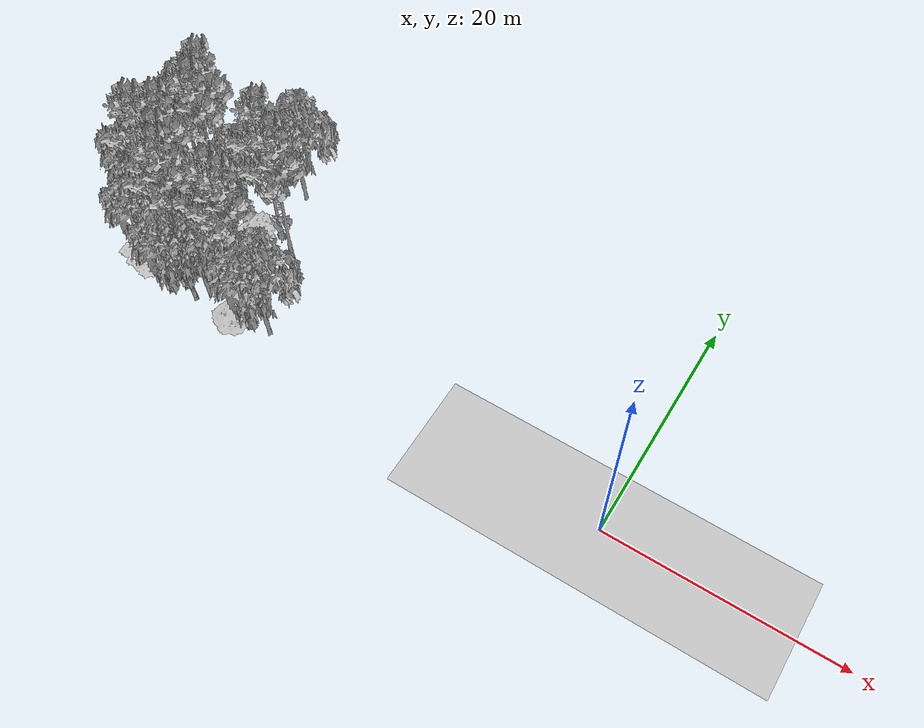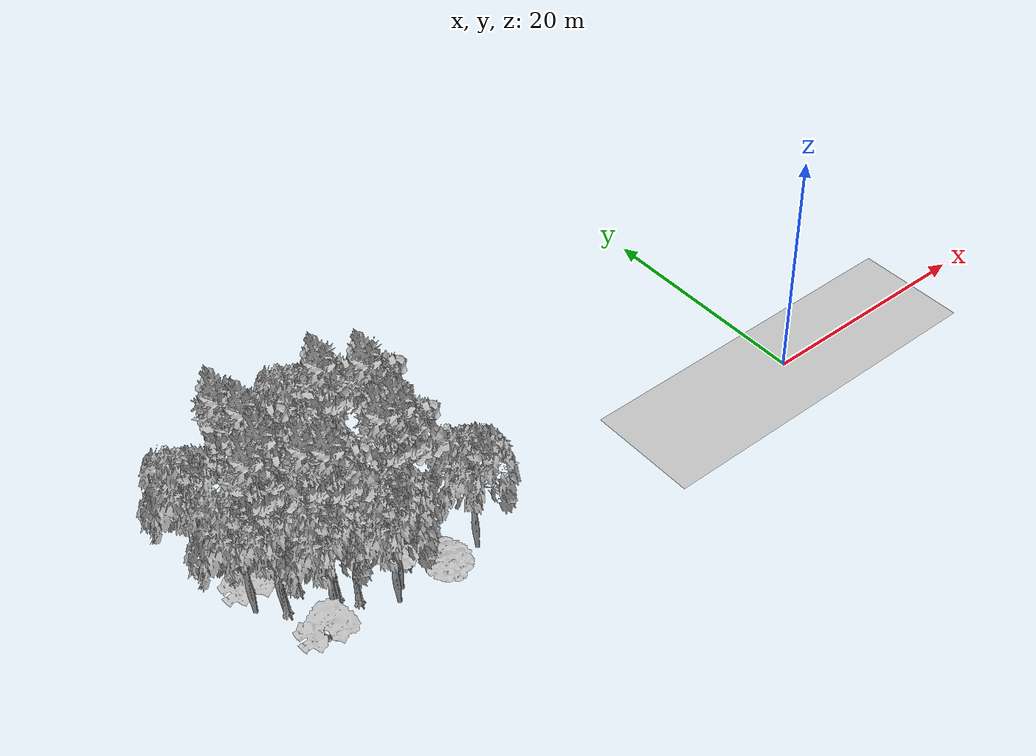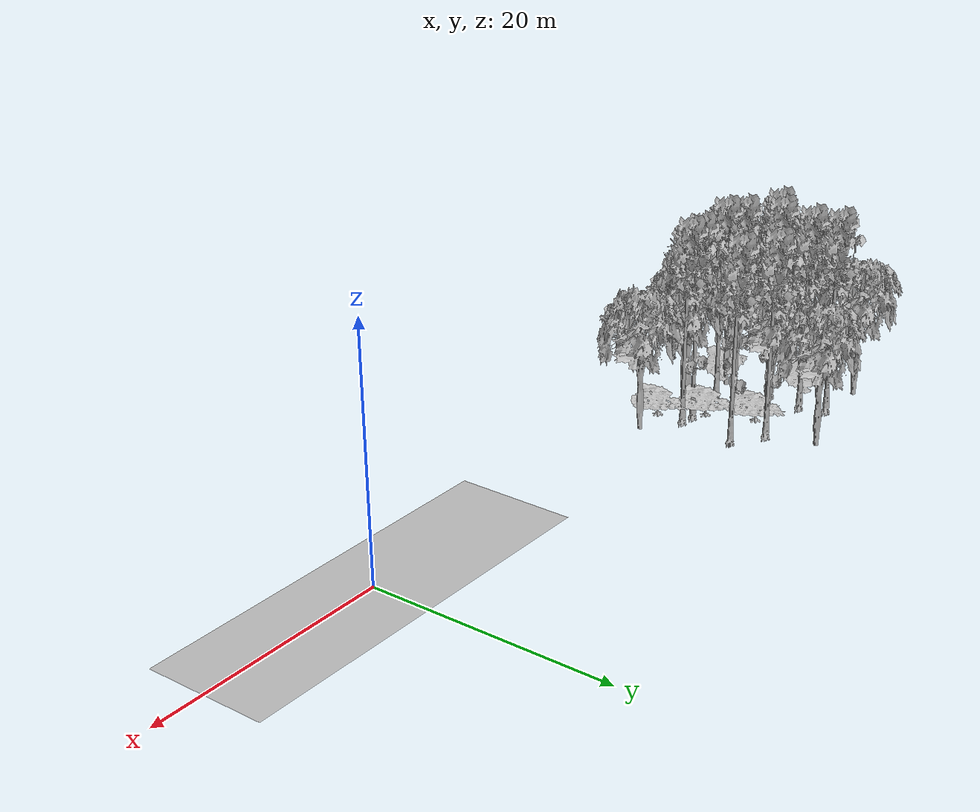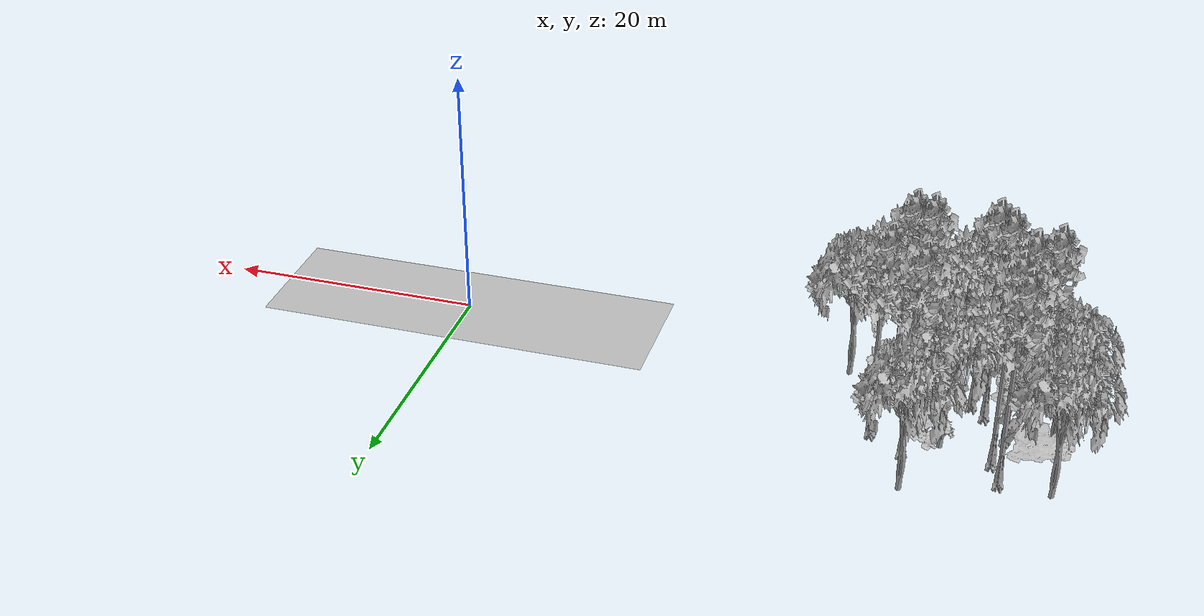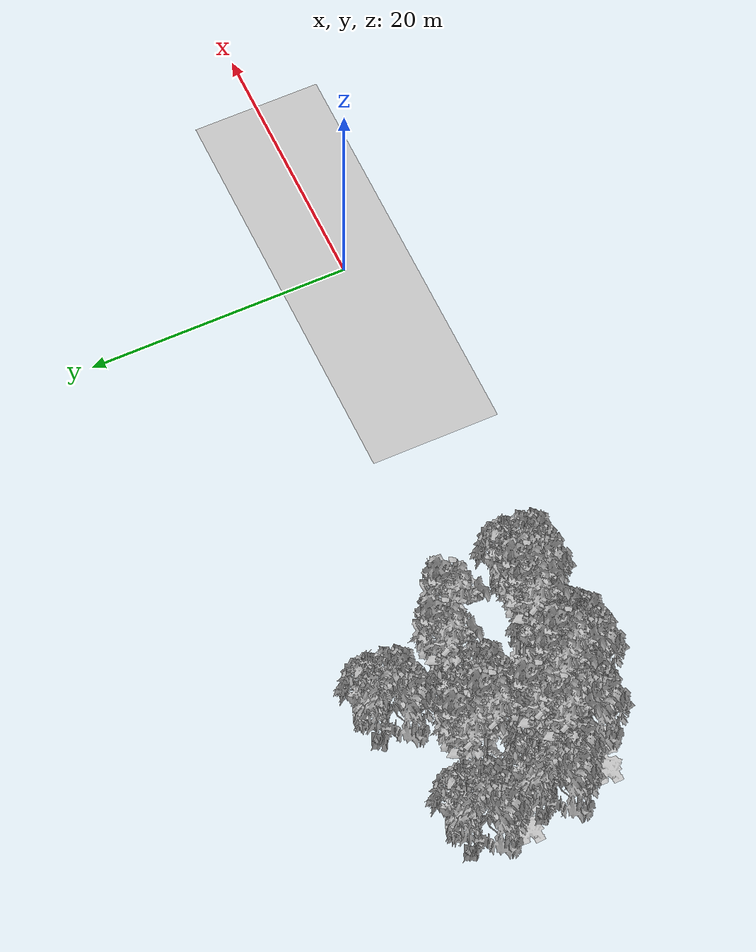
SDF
<sdf version="1.7">
 <world name="default">
  <model name="ground_plane">
   <static>1</static>
   <link name="link">
    <collision name="collision">
     <pose>-50 0 0 0 -0 0</pose>
     <geometry><plane><normal>0 0 1</normal><size>100 100</size></plane></geometry>
     <surface><contact><ode><min_depth>0.01</min_depth><max_vel>0</max_vel></ode></contact></surface>
    </collision>
    <visual name="grass">
     <cast_shadows>0</cast_shadows>
     <geometry>
      <mesh>
       <scale>0.5814285714285714 0.18142857142857144 0.1</scale>
       <uri>file://grass_plane/meshes/grass_plane.dae</uri>
      </mesh>
     </geometry>
    </visual>
   </link>
  </model>
  <model name="Tree 16">
   <static>1</static>
   <pose>-33.788477339152394 7.710203744241319 0 1.57079 -0 0</pose>
   <link name="link">
    <collision name="collision">
     <geometry><mesh><scale>3.5 5 3.5</scale><uri>model://tree_9/meshes/tree_9.obj</uri></mesh></geometry>
    </collision>
    <visual name="visual">
     <geometry><mesh><scale>3.5 5 3.5</scale><uri>model://tree_9/meshes/tree_9.obj</uri></mesh></geometry>
    </visual>
   </link>
  </model>
  <model name="Tree 20">
   <static>1</static>
   <pose>-43.339526954036955 11.111264934391812 0 1.57079 -0 0</pose>
   <link name="link">
    <collision name="collision">
     <geometry><mesh><scale>3.5 5 3.5</scale><uri>model://tree_9/meshes/tree_9.obj</uri></mesh></geometry>
    </collision>
    <visual name="visual">
     <geometry><mesh><scale>3.5 5 3.5</scale><uri>model://tree_9/meshes/tree_9.obj</uri></mesh></geometry>
    </visual>
   </link>
  </model>
  <model name="Tree 23">
   <static>1</static>
   <pose>-43.88627854497907 0.6732376981152903 0 1.57079 -0 0</pose>
   <link name="link">
    <collision name="collision">
     <geometry><mesh><scale>3 2 3</scale><uri>model://tree_3/meshes/tree_3.obj</uri></mesh></geometry>
    </collision>
    <visual name="visual">
     <geometry><mesh><scale>3 2 3</scale><uri>model://tree_3/meshes/tree_3.obj</uri></mesh></geometry>
    </visual>
   </link>
  </model>
  <model name="Tree 31">
   <static>1</static>
   <pose>-35.96202324921588 2.7534249938481707 0 1.57079 -0 0</pose>
   <link name="link">
    <collision name="collision">
     <geometry><mesh><scale>3.5 5 3.5</scale><uri>model://tree_9/meshes/tree_9.obj</uri></mesh></geometry>
    </collision>
    <visual name="visual">
     <geometry><mesh><scale>3.5 5 3.5</scale><uri>model://tree_9/meshes/tree_9.obj</uri></mesh></geometry>
    </visual>
   </link>
  </model>
  <model name="Tree 33">
   <static>1</static>
   <pose>-36.350605501364775 9.465256943601638 0 1.57079 -0 0</pose>
   <link name="link">
    <collision name="collision">
     <geometry><mesh><scale>3.5 5 3.5</scale><uri>model://tree_9/meshes/tree_9.obj</uri></mesh></geometry>
    </collision>
    <visual name="visual">
     <geometry><mesh><scale>3.5 5 3.5</scale><uri>model://tree_9/meshes/tree_9.obj</uri></mesh></geometry>
    </visual>
   </link>
  </model>
  <model name="Tree 73">
   <static>1</static>
   <pose>-42.635785733122106 8.965193948786933 0 1.57079 -0 0</pose>
   <link name="link">
    <collision name="collision">
     <geometry><mesh><scale>3.5 5 3.5</scale><uri>model://tree_9/meshes/tree_9.obj</uri></mesh></geometry>
    </collision>
    <visual name="visual">
     <geometry><mesh><scale>3.5 5 3.5</scale><uri>model://tree_9/meshes/tree_9.obj</uri></mesh></geometry>
    </visual>
   </link>
  </model>
  <model name="Tree 77">
   <static>1</static>
   <pose>-47.09675975776117 11.659844885435557 0 1.57079 -0 0</pose>
   <link name="link">
    <collision name="collision">
     <geometry><mesh><scale>3.5 5 3.5</scale><uri>model://tree_2/meshes/tree_2.obj</uri></mesh></geometry>
    </collision>
    <visual name="visual">
     <geometry><mesh><scale>3.5 5 3.5</scale><uri>model://tree_2/meshes/tree_2.obj</uri></mesh></geometry>
    </visual>
   </link>
  </model>
  <model name="Tree 89">
   <static>1</static>
   <pose>-31.137001431012415 0.7885357527108479 0 1.57079 -0 0</pose>
   <link name="link">
    <collision name="collision">
     <geometry><mesh><scale>3.5 5 3.5</scale><uri>model://tree_2/meshes/tree_2.obj</uri></mesh></geometry>
    </collision>
    <visual name="visual">
     <geometry><mesh><scale>3.5 5 3.5</scale><uri>model://tree_2/meshes/tree_2.obj</uri></mesh></geometry>
    </visual>
   </link>
  </model>
  <model name="Tree 101">
   <static>1</static>
   <pose>-37.58105871573472 1.1743043079823785 0 1.57079 -0 0</pose>
   <link name="link">
    <collision name="collision">
     <geometry><mesh><scale>3.5 5 3.5</scale><uri>model://tree_2/meshes/tree_2.obj</uri></mesh></geometry>
    </collision>
    <visual name="visual">
     <geometry><mesh><scale>3.5 5 3.5</scale><uri>model://tree_2/meshes/tree_2.obj</uri></mesh></geometry>
    </visual>
   </link>
  </model>
  <model name="Tree 134">
   <static>1</static>
   <pose>-40.436016157845074 2.2510399809300736 0 1.57079 -0 0</pose>
   <link name="link">
    <collision name="collision">
     <geometry><mesh><scale>3.5 5 3.5</scale><uri>model://tree_9/meshes/tree_9.obj</uri></mesh></geometry>
    </collision>
    <visual name="visual">
     <geometry><mesh><scale>3.5 5 3.5</scale><uri>model://tree_9/meshes/tree_9.obj</uri></mesh></geometry>
    </visual>
   </link>
  </model>
  <model name="Tree 152">
   <static>1</static>
   <pose>-42.54396107445803 1.9331279933723344 0 1.57079 -0 0</pose>
   <link name="link">
    <collision name="collision">
     <geometry><mesh><scale>3.5 5 3.5</scale><uri>model://tree_2/meshes/tree_2.obj</uri></mesh></geometry>
    </collision>
    <visual name="visual">
     <geometry><mesh><scale>3.5 5 3.5</scale><uri>model://tree_2/meshes/tree_2.obj</uri></mesh></geometry>
    </visual>
   </link>
  </model>
  <model name="Tree 164">
   <static>1</static>
   <pose>-44.83846637571095 4.722799799122029 0 1.57079 -0 0</pose>
   <link name="link">
    <collision name="collision">
     <geometry><mesh><scale>3.5 5 3.5</scale><uri>model://tree_9/meshes/tree_9.obj</uri></mesh></geometry>
    </collision>
    <visual name="visual">
     <geometry><mesh><scale>3.5 5 3.5</scale><uri>model://tree_9/meshes/tree_9.obj</uri></mesh></geometry>
    </visual>
   </link>
  </model>
  <model name="Tree 172">
   <static>1</static>
   <pose>-38.41088976288208 0.2751229139688487 0 1.57079 -0 0</pose>
   <link name="link">
    <collision name="collision">
     <geometry><mesh><scale>3.5 5 3.5</scale><uri>model://tree_2/meshes/tree_2.obj</uri></mesh></geometry>
    </collision>
    <visual name="visual">
     <geometry><mesh><scale>3.5 5 3.5</scale><uri>model://tree_2/meshes/tree_2.obj</uri></mesh></geometry>
    </visual>
   </link>
  </model>
  <model name="Tree 191">
   <static>1</static>
   <pose>-38.94613744105952 8.095883835508484 0 1.57079 -0 0</pose>
   <link name="link">
    <collision name="collision">
     <geometry><mesh><scale>3.5 5 3.5</scale><uri>model://tree_2/meshes/tree_2.obj</uri></mesh></geometry>
    </collision>
    <visual name="visual">
     <geometry><mesh><scale>3.5 5 3.5</scale><uri>model://tree_2/meshes/tree_2.obj</uri></mesh></geometry>
    </visual>
   </link>
  </model>
  <model name="Tree 192">
   <static>1</static>
   <pose>-44.94638580587651 5.011721734707628 0 1.57079 -0 0</pose>
   <link name="link">
    <collision name="collision">
     <geometry><mesh><scale>3.5 5 3.5</scale><uri>model://tree_2/meshes/tree_2.obj</uri></mesh></geometry>
    </collision>
    <visual name="visual">
     <geometry><mesh><scale>3.5 5 3.5</scale><uri>model://tree_2/meshes/tree_2.obj</uri></mesh></geometry>
    </visual>
   </link>
  </model>
  <model name="Tree 210">
   <static>1</static>
   <pose>-45.75711300175711 7.544768177656174 0 1.57079 -0 0</pose>
   <link name="link">
    <collision name="collision">
     <geometry><mesh><scale>3 2 3</scale><uri>model://tree_3/meshes/tree_3.obj</uri></mesh></geometry>
    </collision>
    <visual name="visual">
     <geometry><mesh><scale>3 2 3</scale><uri>model://tree_3/meshes/tree_3.obj</uri></mesh></geometry>
    </visual>
   </link>
  </model>
  <model name="Tree 225">
   <static>1</static>
   <pose>-34.66786391320403 2.581231618563013 0 1.57079 -0 0</pose>
   <link name="link">
    <collision name="collision">
     <geometry><mesh><scale>3.5 5 3.5</scale><uri>model://tree_9/meshes/tree_9.obj</uri></mesh></geometry>
    </collision>
    <visual name="visual">
     <geometry><mesh><scale>3.5 5 3.5</scale><uri>model://tree_9/meshes/tree_9.obj</uri></mesh></geometry>
    </visual>
   </link>
  </model>
  <model name="Tree 255">
   <static>1</static>
   <pose>-36.87997928943814 13.772209788505844 0 1.57079 -0 0</pose>
   <link name="link">
    <collision name="collision">
     <geometry><mesh><scale>3.5 5 3.5</scale><uri>model://tree_2/meshes/tree_2.obj</uri></mesh></geometry>
    </collision>
    <visual name="visual">
     <geometry><mesh><scale>3.5 5 3.5</scale><uri>model://tree_2/meshes/tree_2.obj</uri></mesh></geometry>
    </visual>
   </link>
  </model>
  <model name="Tree 259">
   <static>1</static>
   <pose>-41.47490334862824 3.4051344856185644 0 1.57079 -0 0</pose>
   <link name="link">
    <collision name="collision">
     <geometry><mesh><scale>3.5 5 3.5</scale><uri>model://tree_9/meshes/tree_9.obj</uri></mesh></geometry>
    </collision>
    <visual name="visual">
     <geometry><mesh><scale>3.5 5 3.5</scale><uri>model://tree_9/meshes/tree_9.obj</uri></mesh></geometry>
    </visual>
   </link>
  </model>
  <model name="Tree 262">
   <static>1</static>
   <pose>-37.828222823224635 7.586473578096275 0 1.57079 -0 0</pose>
   <link name="link">
    <collision name="collision">
     <geometry><mesh><scale>4 2.5 4</scale><uri>model://tree_1/meshes/tree_1.obj</uri></mesh></geometry>
    </collision>
    <visual name="visual">
     <geometry><mesh><scale>4 2.5 4</scale><uri>model://tree_1/meshes/tree_1.obj</uri></mesh></geometry>
    </visual>
   </link>
  </model>
  <model name="Tree 263">
   <static>1</static>
   <pose>-43.24546064104542 5.834111249833672 0 1.57079 -0 0</pose>
   <link name="link">
    <collision name="collision">
     <geometry><mesh><scale>3.5 5 3.5</scale><uri>model://tree_9/meshes/tree_9.obj</uri></mesh></geometry>
    </collision>
    <visual name="visual">
     <geometry><mesh><scale>3.5 5 3.5</scale><uri>model://tree_9/meshes/tree_9.obj</uri></mesh></geometry>
    </visual>
   </link>
  </model>
  <model name="Tree 278">
   <static>1</static>
   <pose>-34.170904074419354 0.4801822554233546 0 1.57079 -0 0</pose>
   <link name="link">
    <collision name="collision">
     <geometry><mesh><scale>4 2.5 4</scale><uri>model://tree_1/meshes/tree_1.obj</uri></mesh></geometry>
    </collision>
    <visual name="visual">
     <geometry><mesh><scale>4 2.5 4</scale><uri>model://tree_1/meshes/tree_1.obj</uri></mesh></geometry>
    </visual>
   </link>
  </model>
  <model name="Tree 285">
   <static>1</static>
   <pose>-46.635363148535795 6.089686803156308 0 1.57079 -0 0</pose>
   <link name="link">
    <collision name="collision">
     <geometry><mesh><scale>3.5 5 3.5</scale><uri>model://tree_2/meshes/tree_2.obj</uri></mesh></geometry>
    </collision>
    <visual name="visual">
     <geometry><mesh><scale>3.5 5 3.5</scale><uri>model://tree_2/meshes/tree_2.obj</uri></mesh></geometry>
    </visual>
   </link>
  </model>
  <model name="Tree 290">
   <static>1</static>
   <pose>-36.31850665921262 3.759569386747863 0 1.57079 -0 0</pose>
   <link name="link">
    <collision name="collision">
     <geometry><mesh><scale>4 2.5 4</scale><uri>model://tree_1/meshes/tree_1.obj</uri></mesh></geometry>
    </collision>
    <visual name="visual">
     <geometry><mesh><scale>4 2.5 4</scale><uri>model://tree_1/meshes/tree_1.obj</uri></mesh></geometry>
    </visual>
   </link>
  </model>
  <model name="Bush 1">
   <static>1</static>
   <pose>-39.03051051650648 6.724734601542906 0 1.57079 -0 0</pose>
   <link name="link">
    <collision name="collision">
     <geometry><mesh><scale>2 2 2</scale><uri>model://bush_3/meshes/bush_3.obj</uri></mesh></geometry>
     <surface><contact><collide_without_contact>false</collide_without_contact></contact></surface>
    </collision>
    <visual name="visual">
     <geometry><mesh><scale>2 2 2</scale><uri>model://bush_3/meshes/bush_3.obj</uri></mesh></geometry>
    </visual>
   </link>
  </model>
 </world>
</sdf>
